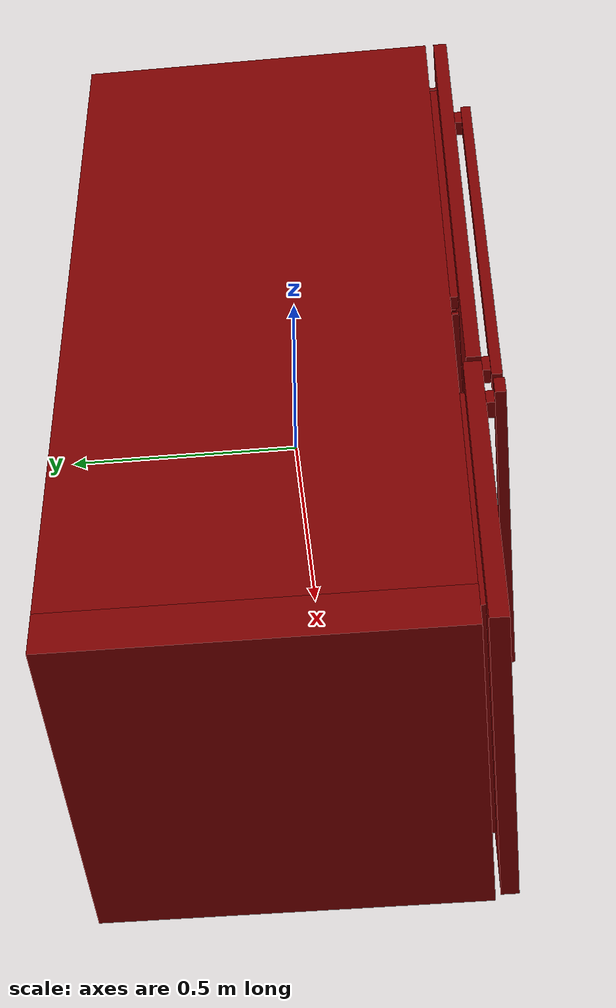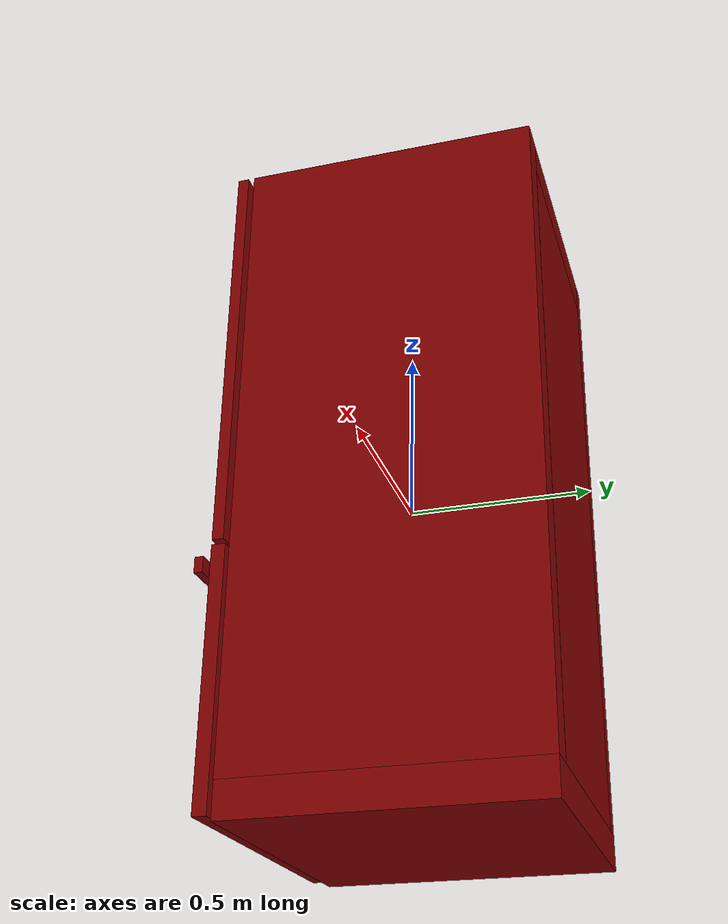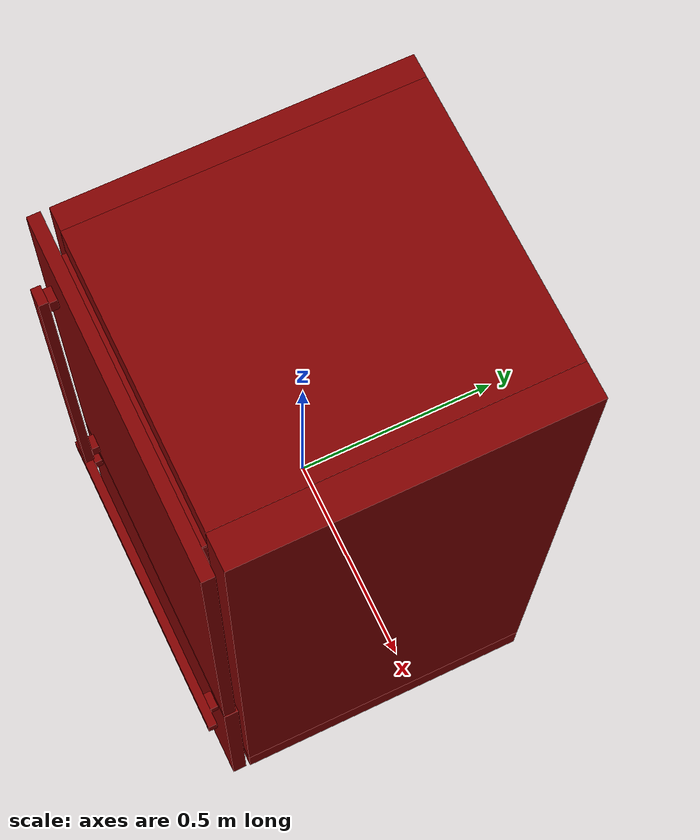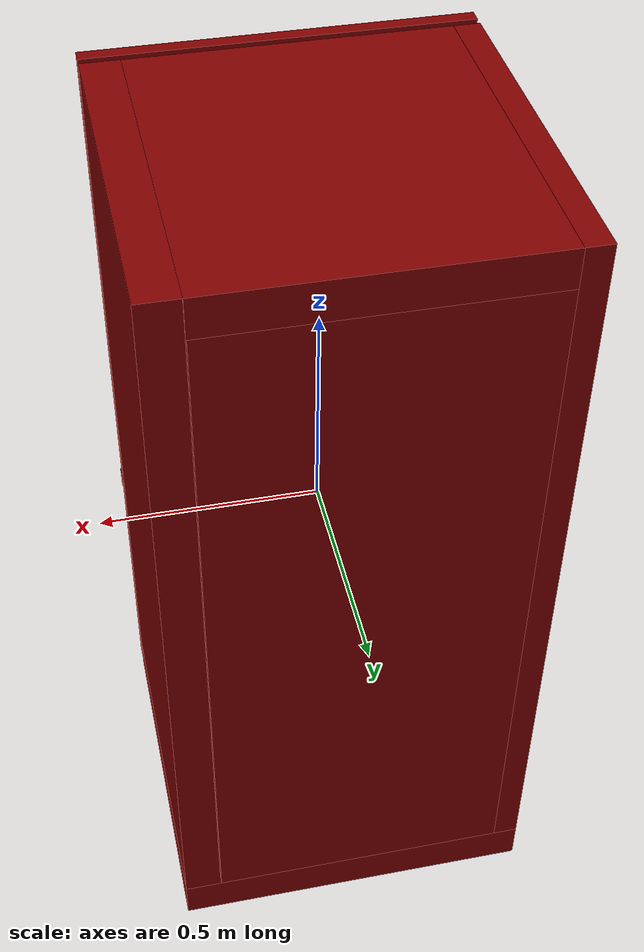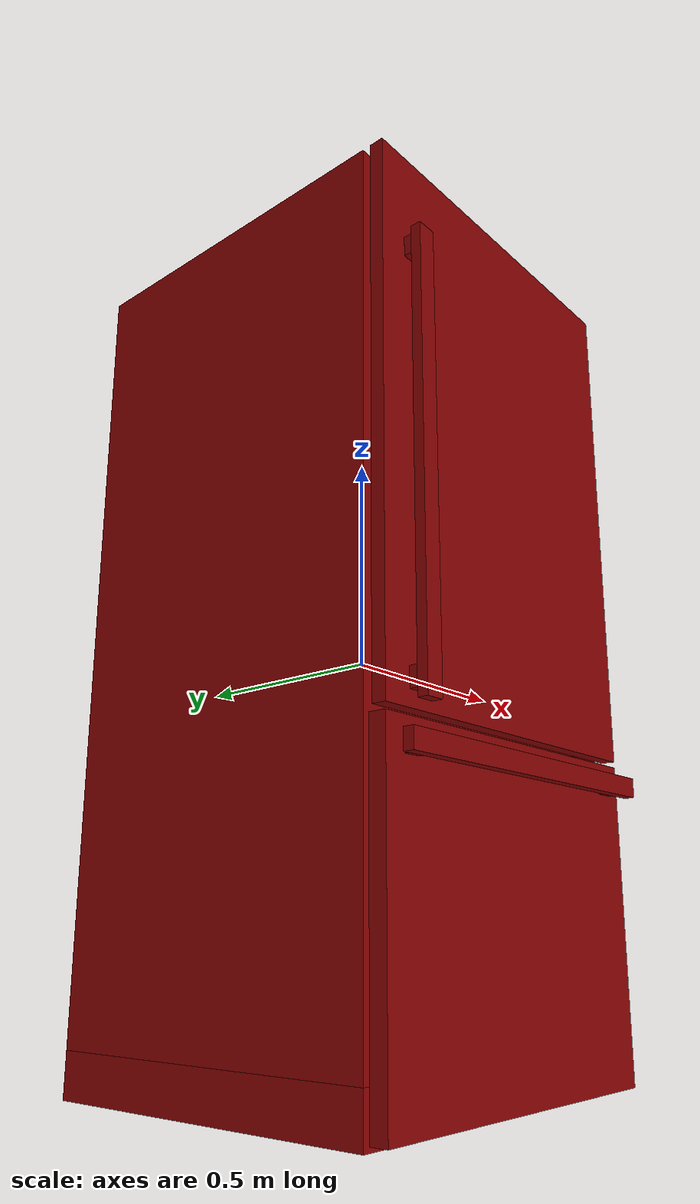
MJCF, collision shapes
<?xml version='1.0' encoding='UTF-8'?>
<mujoco model="model">
  <option timestep="0.002" gravity="0.0 0.0 -9.81"/>
  <compiler angle="radian"/>
  <asset>
    <mesh file="visuals/freezer0.obj" name="freezer0_vis"/>
    <mesh file="visuals/fridge_door.obj" name="fridge_door_vis"/>
    <mesh file="visuals/fridge_door_Clear.obj" name="fridge_door_Clear_vis"/>
    <mesh file="visuals/fridge_drawer0.obj" name="fridge_drawer0_vis"/>
    <mesh file="visuals/Body001.obj" name="Body001_vis"/>
    <mesh file="visuals/Body001_Clear.obj" name="Body001_Clear_vis"/>
    <texture file="visuals/T_BC001.png" name="Body001_material" type="2d"/>
    <material name="Body001_material" rgba="1 1 1 1.0" texture="Body001_material" shininess="0.4472135901451111" specular="2"/>
    <texture file="visuals/T_BC001.png" name="freezer0_material" type="2d"/>
    <material name="freezer0_material" rgba="1 1 1 1.0" texture="freezer0_material" shininess="0.4472135901451111" specular="2"/>
    <texture file="visuals/T_BC001.png" name="fridge_door_material" type="2d"/>
    <material name="fridge_door_material" rgba="1 1 1 1.0" texture="fridge_door_material" shininess="0.4472135901451111" specular="2"/>
    <texture file="visuals/T_BC001.png" name="fridge_door_Clear_material" type="2d"/>
    <material name="fridge_door_Clear_material" rgba="1 1 1 0.4411303400993347" texture="fridge_door_Clear_material" shininess="0.5" specular="0.3103448502657381"/>
    <texture file="visuals/T_BC001.png" name="fridge_drawer0_material" type="2d"/>
    <material name="fridge_drawer0_material" rgba="1 1 1 1.0" texture="fridge_drawer0_material" shininess="0.4472135901451111" specular="0.3103448502657381"/>
    <texture file="visuals/T_BC001.png" name="Body001_Clear_material" type="2d"/>
    <material name="Body001_Clear_material" rgba="1 1 1 0.4411303400993347" texture="Body001_Clear_material" shininess="0.5" specular="0.3103448502657381"/>
  </asset>
  <default>
    <default class="visual">
      <geom conaffinity="0" contype="0" group="1" type="mesh"/>
    </default>
    <default class="collision">
      <geom group="0" rgba="0.5 0 0 0.5"/>
    </default>
    <default class="spawn">
      <geom group="0" rgba="1 1 1 0.5" contype="0" conaffinity="0"/>
      <site group="0" rgba="1 1 1 0.5"/>
    </default>
    <default class="region">
      <geom group="1" conaffinity="0" contype="0" rgba="0 1 0 0"/>
    </default>
  </default>
  <worldbody>
    <body>
      <body name="object">
        <geom mesh="Body001_vis" type="mesh" solimp="0.998 0.998 0.001" solref="0.001 1" friction="0.95 0.3 0.1" class="visual" material="Body001_material"/>
        <geom class="collision" type="box" pos="3.4691765904426575e-08 0.046065088361501694 -0.8849540948867798" size="0.4184049665927887 0.40577802062034607 0.048721954226493835" quat="1.0 0.0 0.0 0.0"/>
        <geom class="collision" type="box" pos="-0.38955575227737427 0.0463176891207695 0.04772455617785454" size="0.02884865179657936 0.40551820397377014 0.8859670162200928" quat="1.0 0.0 0.0 0.0"/>
        <geom class="collision" type="box" pos="-0.014195600524544716 0.04606311395764351 0.8900960087776184" size="0.34721803665161133 0.40577998757362366 0.0435805581510067" quat="1.0 0.0 0.0 0.0"/>
        <geom class="collision" type="box" pos="0.37585487961769104 0.04562413692474365 0.04772542417049408" size="0.04254920780658722 0.40621209144592285 0.8859654068946838" quat="1.0 0.0 0.0 0.0"/>
        <geom class="collision" type="box" pos="-0.009869547560811043 -0.0465119294822216 0.5256437063217163" size="0.34337595105171204 0.2574009597301483 0.002635375363752246" quat="1.0 0.0 0.0 0.0"/>
        <geom class="collision" type="box" pos="-0.009583763778209686 -0.04710531234741211 0.21403063833713531" size="0.34366172552108765 0.2551637291908264 0.0026230011135339737" quat="1.0 0.0 0.0 0.0"/>
        <geom class="collision" type="box" pos="-0.014991133473813534 0.32848867774009705 0.006801291834563017" size="0.34631630778312683 0.12335363030433655 0.8450122475624084" quat="1.0 0.0 0.0 0.0"/>
        <geom class="collision" type="box" pos="-0.014195600524544716 -0.02551545947790146 -0.22356769442558289" size="0.34721803665161133 0.32394760847091675 0.030765503644943237" quat="1.0 0.0 0.0 0.0"/>
        <body name="freezer0">
          <geom class="region" name="reg_freezer0" type="box" pos="-0.009489908814430237 -0.09901586174964905 -0.5897982716560364" size="0.2998690286874771 0.24857039546966553 0.19871569967269898"/>
          <joint axis="0.0 -1.0 0.0" pos="8.940696716308594e-08 -0.13862109184265137 -0.5760611891746521" limited="true" name="freezer0_door_joint" range="0.0 0.45" type="slide" damping="1" frictionloss="1" armature=".01" stiffness="0.05"/>
          <geom mesh="freezer0_vis" type="mesh" solimp="0.998 0.998 0.001" solref="0.001 1" friction="0.95 0.3 0.1" class="visual" material="freezer0_material"/>
          <geom class="collision" type="box" pos="6.955815479159355e-09 -0.3903758227825165 -0.5759356617927551" size="0.4184049367904663 0.01874351315200329 0.34442299604415894" quat="1.0 0.0 0.0 0.0" name="freezer0_door_main"/>
          <geom class="collision" type="box" pos="-0.3456881642341614 -0.42310863733291626 -0.2831193506717682" size="0.021169910207390785 0.013989350758492947 0.017770813778042793" quat="1.0 0.0 0.0 0.0" name="freezer0_door_handle_1"/>
          <geom class="collision" type="box" pos="0.011073564179241657 -0.44080981612205505 -0.2825925648212433" size="0.4073314368724823 0.01143124233931303 0.02148660458624363" quat="1.0 0.0 0.0 0.0" name="freezer0_door_handle_main"/>
          <geom class="collision" type="box" pos="0.3575775623321533 -0.42310863733291626 -0.2831193506717682" size="0.021169910207390785 0.01398931723088026 0.017770813778042793" quat="1.0 0.0 0.0 0.0" name="freezer0_door_handle_2"/>
          <geom class="collision" type="box" pos="0.3081456422805786 -0.08935493230819702 -0.6066580414772034" size="0.012117437086999416 0.26494473218917847 0.22165796160697937" quat="1.0 0.0 0.0 0.0"/>
          <geom class="collision" type="box" pos="-0.32881656289100647 -0.08935493230819702 -0.6066580414772034" size="0.012117435224354267 0.26494473218917847 0.22165796160697937" quat="1.0 0.0 0.0 0.0"/>
          <geom class="collision" type="box" pos="-0.009681074880063534 0.16568218171596527 -0.6066580414772034" size="0.306090384721756 0.009798376820981503 0.22165796160697937" quat="1.0 0.0 0.0 0.0"/>
          <geom class="collision" type="box" pos="-0.009681080467998981 -0.09938091784715652 -0.8112134337425232" size="0.306090384721756 0.2548059821128845 0.017102576792240143" quat="1.0 0.0 0.0 0.0"/>
          <geom class="collision" type="box" pos="-0.013841669075191021 -0.3630203902721405 -0.5440488457679749" size="0.34341034293174744 0.010004036128520966 0.28850358724594116" quat="1.0 0.0 0.0 0.0"/>
        </body>
        <body name="fridge_door">
          <joint axis="0.0 0.0 1.0" pos="0.398270845413208 -0.39148035645484924 0.357952356338501" limited="true" name="fridge_door_joint" range="0.0 1.5707963267948966" type="hinge" damping="1" frictionloss="1" armature=".01" stiffness="0.05"/>
          <geom mesh="fridge_door_vis" type="mesh" solimp="0.998 0.998 0.001" solref="0.001 1" friction="0.95 0.3 0.1" class="visual" material="fridge_door_material"/>
          <geom class="collision" type="box" pos="-0.3035118579864502 -0.3609536588191986 0.1288968026638031" size="0.003228553105145693 0.011789285577833652 0.059241604059934616" quat="1.0 0.0 0.0 0.0"/>
          <geom class="collision" type="box" pos="-0.0008189299842342734 -0.3415113389492035 0.13031218945980072" size="0.3010403513908386 0.003955512773245573 0.06320180743932724" quat="1.0 0.0 0.0 0.0"/>
          <geom class="collision" type="box" pos="0.30434656143188477 -0.35811498761177063 0.12843604385852814" size="0.0020166372414678335 0.020167620852589607 0.058914560824632645" quat="1.0 0.0 0.0 0.0"/>
          <geom class="collision" type="box" pos="-0.0010958004277199507 -0.3632794916629791 0.0617678165435791" size="0.301297664642334 0.014990507625043392 0.004100287798792124" quat="1.0 0.0 0.0 0.0"/>
          <geom class="collision" type="box" pos="0.0006768889725208282 -0.3464416563510895 0.3771534860134125" size="0.2995249629020691 0.014958427287638187 0.0021699205972254276" quat="1.0 0.0 0.0 0.0"/>
          <geom class="collision" type="box" pos="0.3041929602622986 -0.3431452214717865 0.41270139813423157" size="0.002170219086110592 0.012792040593922138 0.029203588142991066" quat="1.0 0.0 0.0 0.0"/>
          <geom class="collision" type="box" pos="0.00023628940107300878 -0.3249150812625885 0.4143744111061096" size="0.2999827563762665 0.00504776556044817 0.027853142470121384" quat="1.0 0.0 0.0 0.0"/>
          <geom class="collision" type="box" pos="-0.3053753972053528 -0.3468959629535675 0.41161346435546875" size="0.0013649907195940614 0.01509031094610691 0.028536992147564888" quat="1.0 0.0 0.0 0.0"/>
          <geom class="collision" type="box" pos="-0.3035118579864502 -0.34567341208457947 0.5358172655105591" size="0.0032285209745168686 0.014797506853938103 0.029959529638290405" quat="1.0 0.0 0.0 0.0"/>
          <geom class="collision" type="box" pos="0.0007004301296547055 -0.3274819552898407 0.5373093485832214" size="0.2995171844959259 0.003708739997819066 0.029826143756508827" quat="1.0 0.0 0.0 0.0"/>
          <geom class="collision" type="box" pos="0.30440574884414673 -0.3509902060031891 0.5287048816680908" size="0.0019574060570448637 0.011457794345915318 0.03615258261561394" quat="1.0 0.0 0.0 0.0"/>
          <geom class="collision" type="box" pos="0.0013456159504130483 -0.35078075528144836 0.5021404027938843" size="0.2988562285900116 0.014763807877898216 0.0041002850048244" quat="1.0 0.0 0.0 0.0"/>
          <geom class="collision" type="box" pos="-0.00013862716150470078 -0.33811357617378235 0.6366299390792847" size="0.300340473651886 0.022642824798822403 0.0015565496869385242" quat="1.0 0.0 0.0 0.0"/>
          <geom class="collision" type="box" pos="0.3044595718383789 -0.34080877900123596 0.6812611222267151" size="0.0019036070443689823 0.019667141139507294 0.041286613792181015" quat="1.0 0.0 0.0 0.0"/>
          <geom class="collision" type="box" pos="-0.0001229922636412084 -0.31280675530433655 0.6845166683197021" size="0.3003382086753845 0.004460331052541733 0.03835388273000717" quat="1.0 0.0 0.0 0.0"/>
          <geom class="collision" type="box" pos="-0.3035118579864502 -0.3385394513607025 0.6774614453315735" size="0.003228538203984499 0.017397744581103325 0.04565775394439697" quat="1.0 0.0 0.0 0.0"/>
          <geom class="collision" type="box" pos="6.984919309616089e-09 -0.39368265867233276 0.3577885627746582" size="0.4184049367904663 0.015436657704412937 0.5758880376815796" quat="1.0 0.0 0.0 0.0" name="fridge_door_main"/>
          <geom class="collision" type="box" pos="-0.3326978087425232 -0.4230325222015381 0.7210708856582642" size="0.017770813778042793 0.013913324102759361 0.021169910207390785" quat="1.0 0.0 0.0 0.0" name="fridge_door_handle_1"/>
          <geom class="collision" type="box" pos="-0.3332245945930481 -0.44065728783607483 0.2762830853462219" size="0.021486591547727585 0.01143124233931303 0.4793464243412018" quat="1.0 0.0 0.0 0.0" name="fridge_door_handle_main"/>
          <geom class="collision" type="box" pos="-0.3326978087425232 -0.42303237318992615 -0.1627090871334076" size="0.017770813778042793 0.013913124799728394 0.021169910207390785" quat="1.0 0.0 0.0 0.0" name="fridge_door_handle_2"/>
          <geom class="collision" type="box" pos="-0.01318422518670559 -0.35715028643608093 0.840620756149292" size="0.34219425916671753 0.023262569680809975 0.004276500083506107" quat="1.0 0.0 0.0 0.0"/>
          <geom class="collision" type="box" pos="0.3195115029811859 -0.35715028643608093 0.4454904794692993" size="0.009498503990471363 0.023262569680809975 0.39117616415023804" quat="1.0 0.0 0.0 0.0"/>
          <geom class="collision" type="box" pos="-0.3373781442642212 -0.35715028643608093 0.4454904794692993" size="0.016009612008929253 0.023262571543455124 0.39117616415023804" quat="1.0 0.0 0.0 0.0"/>
          <body name="fridge_door_Clear">
            <geom mesh="fridge_door_Clear_vis" type="mesh" solimp="0.998 0.998 0.001" solref="0.001 1" friction="0.95 0.3 0.1" class="visual" material="fridge_door_Clear_material"/>
            <geom class="collision" type="box" pos="-0.3035118579864502 -0.3609536588191986 0.1288968026638031" size="0.003228553105145693 0.011789285577833652 0.059241604059934616" quat="1.0 0.0 0.0 0.0"/>
            <geom class="collision" type="box" pos="-0.0008189299842342734 -0.3415113389492035 0.13031218945980072" size="0.3010403513908386 0.003955512773245573 0.06320180743932724" quat="1.0 0.0 0.0 0.0"/>
            <geom class="collision" type="box" pos="0.30434656143188477 -0.35811498761177063 0.12843604385852814" size="0.0020166372414678335 0.020167620852589607 0.058914560824632645" quat="1.0 0.0 0.0 0.0"/>
            <geom class="collision" type="box" pos="-0.0010958004277199507 -0.3632794916629791 0.0617678165435791" size="0.301297664642334 0.014990507625043392 0.004100287798792124" quat="1.0 0.0 0.0 0.0"/>
            <geom class="collision" type="box" pos="0.0006768889725208282 -0.3464416563510895 0.3771534860134125" size="0.2995249629020691 0.014958427287638187 0.0021699205972254276" quat="1.0 0.0 0.0 0.0"/>
            <geom class="collision" type="box" pos="0.3041929602622986 -0.3431452214717865 0.41270139813423157" size="0.002170219086110592 0.012792040593922138 0.029203588142991066" quat="1.0 0.0 0.0 0.0"/>
            <geom class="collision" type="box" pos="0.00023628940107300878 -0.3249150812625885 0.4143744111061096" size="0.2999827563762665 0.00504776556044817 0.027853142470121384" quat="1.0 0.0 0.0 0.0"/>
            <geom class="collision" type="box" pos="-0.3053753972053528 -0.3468959629535675 0.41161346435546875" size="0.0013649907195940614 0.01509031094610691 0.028536992147564888" quat="1.0 0.0 0.0 0.0"/>
            <geom class="collision" type="box" pos="-0.3035118579864502 -0.34567341208457947 0.5358172655105591" size="0.0032285209745168686 0.014797506853938103 0.029959529638290405" quat="1.0 0.0 0.0 0.0"/>
            <geom class="collision" type="box" pos="0.0007004301296547055 -0.3274819552898407 0.5373093485832214" size="0.2995171844959259 0.003708739997819066 0.029826143756508827" quat="1.0 0.0 0.0 0.0"/>
            <geom class="collision" type="box" pos="0.30440574884414673 -0.3509902060031891 0.5287048816680908" size="0.0019574060570448637 0.011457794345915318 0.03615258261561394" quat="1.0 0.0 0.0 0.0"/>
            <geom class="collision" type="box" pos="0.0013456159504130483 -0.35078075528144836 0.5021404027938843" size="0.2988562285900116 0.014763807877898216 0.0041002850048244" quat="1.0 0.0 0.0 0.0"/>
            <geom class="collision" type="box" pos="-0.00013862716150470078 -0.33811357617378235 0.6366299390792847" size="0.300340473651886 0.022642824798822403 0.0015565496869385242" quat="1.0 0.0 0.0 0.0"/>
            <geom class="collision" type="box" pos="0.3044595718383789 -0.34080877900123596 0.6812611222267151" size="0.0019036070443689823 0.019667141139507294 0.041286613792181015" quat="1.0 0.0 0.0 0.0"/>
            <geom class="collision" type="box" pos="-0.0001229922636412084 -0.31280675530433655 0.6845166683197021" size="0.3003382086753845 0.004460331052541733 0.03835388273000717" quat="1.0 0.0 0.0 0.0"/>
            <geom class="collision" type="box" pos="-0.3035118579864502 -0.3385394513607025 0.6774614453315735" size="0.003228538203984499 0.017397744581103325 0.04565775394439697" quat="1.0 0.0 0.0 0.0"/>
          </body>
        </body>
        <body name="fridge_drawer0">
          <geom class="region" name="reg_fridge_drawer0" type="box" pos="-0.01835612952709198 -0.044676944613456726 0.011936359107494354" size="0.29385116493701935 0.2101457098722458 0.1787130737900734"/>
          <joint axis="0.0 -1.0 0.0" pos="-0.01722750999033451 -0.09665685147047043 0.00561465322971344" limited="true" name="fridge_drawer0_joint" range="0.0 0.45" type="slide" damping="1" frictionloss="1" armature=".01" stiffness="0.05"/>
          <geom mesh="fridge_drawer0_vis" type="mesh" solimp="0.998 0.998 0.001" solref="0.001 1" friction="0.95 0.3 0.1" class="visual" material="fridge_drawer0_material"/>
          <geom class="collision" type="box" pos="-0.3300918936729431 -0.04381192475557327 0.010443203151226044" size="0.012271959334611893 0.21923433244228363 0.1853756457567215" quat="1.0 0.0 0.0 0.0"/>
          <geom class="collision" type="box" pos="0.2945006191730499 -0.045922257006168365 0.010281492955982685" size="0.012674178928136826 0.22219836711883545 0.18521392345428467" quat="1.0 0.0 0.0 0.0"/>
          <geom class="collision" type="box" pos="-0.016805533319711685 0.17360424995422363 0.011090479791164398" size="0.31907016038894653 0.002899477956816554 0.18602252006530762" quat="1.0 0.0 0.0 0.0"/>
          <geom class="collision" type="box" pos="-0.019166722893714905 -0.26728662848472595 0.010400258004665375" size="0.3196590542793274 0.0026238486170768738 0.18533270061016083" quat="1.0 0.0 0.0 0.0"/>
          <geom class="collision" type="box" pos="-0.016971122473478317 -0.04920931160449982 -0.17960180342197418" size="0.32334086298942566 0.22023600339889526 0.006715747062116861" quat="1.0 0.0 0.0 0.0"/>
          <geom class="collision" type="box" pos="0.1829824149608612 -0.29321175813674927 0.18143442273139954" size="0.11831755191087723 0.008652029559016228 0.014979681000113487" quat="0.9945970773696899 0.0 0.0 0.10381060838699341"/>
          <geom class="collision" type="box" pos="-0.22086118161678314 -0.2920616865158081 0.18143442273139954" size="0.11387142539024353 0.008652029559016228 0.014979681000113487" quat="0.99354088306427 0.0 -0.0 -0.11347480118274689"/>
          <geom class="collision" type="box" pos="-0.02271162159740925 -0.31760120391845703 0.18143442273139954" size="0.09203242510557175 0.008652030490338802 0.014979681000113487" quat="1.0 0.0 0.0 0.0"/>
        </body>
        <body name="Body001_Clear">
          <geom mesh="Body001_Clear_vis" type="mesh" solimp="0.998 0.998 0.001" solref="0.001 1" friction="0.95 0.3 0.1" class="visual" material="Body001_Clear_material"/>
          <geom class="collision" type="box" pos="-0.009869547560811043 -0.0465119294822216 0.5256437063217163" size="0.34337595105171204 0.2574009597301483 0.002635375363752246" quat="1.0 0.0 0.0 0.0"/>
          <geom class="collision" type="box" pos="-0.009583763778209686 -0.04710531234741211 0.21403063833713531" size="0.34366172552108765 0.2551637291908264 0.0026230011135339737" quat="1.0 0.0 0.0 0.0"/>
        </body>
        <geom class="region" name="reg_fridge_shelf0" type="box" pos="-0.013874515891075134 -0.047584161162376404 0.36608510464429855" size="0.34092867171764374 0.24736034667491913 0.14460583573579788"/>
        <geom class="region" name="reg_fridge_shelf1" type="box" pos="-0.013906046748161316 -0.047584161162376404 0.6868031024932861" size="0.3408779481649399 0.24736034667491913 0.15388007259368897"/>
        <geom class="region" name="reg_main" type="box" pos="1.4901161193847656e-08 0.02136211469769478 -5.960464477539063e-08" size="0.4194049665927887 0.4314814040660858 0.9346766600608826"/>
      </body>
    </body>
  </worldbody>
  <actuator>
    <motor name="freezer0_door_joint_actuator" joint="freezer0_door_joint" gear="50"/>
    <motor name="fridge_door_joint_actuator" joint="fridge_door_joint" gear="50"/>
    <motor name="fridge_drawer0_joint_actuator" joint="fridge_drawer0_joint" gear="50"/>
  </actuator>
</mujoco>
